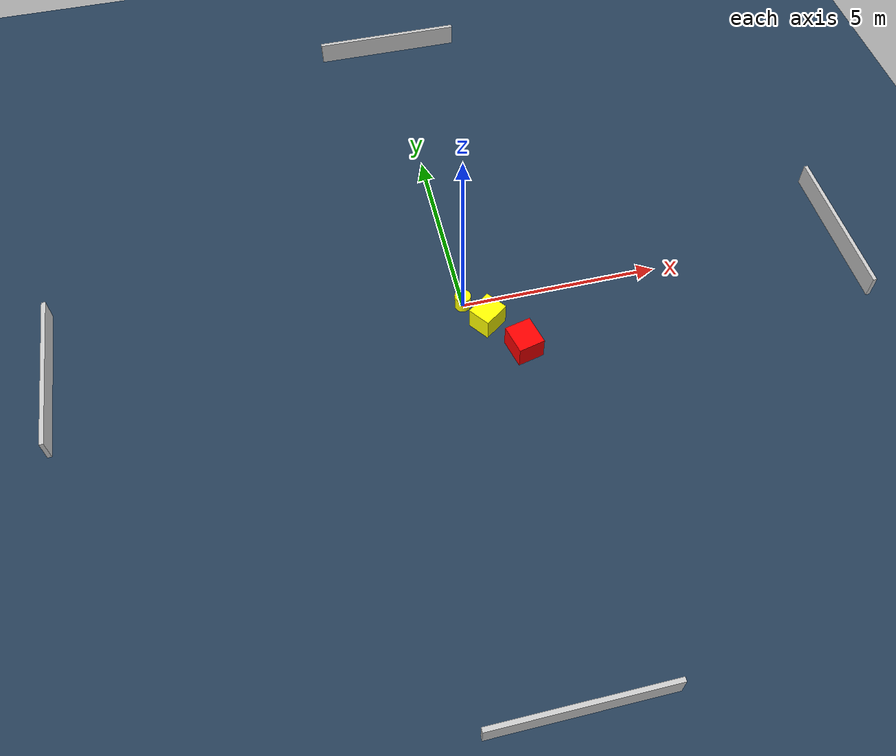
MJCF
<?xml version="1.0" ?>
<mujoco model="generated_environment">
  <option timestep="0.01" integrator="RK4" cone="elliptic"/>
  <default>
    <geom density="1"/>
  </default>
  <asset>
    <texture builtin="gradient" height="3072" name="skybox" rgb1="0.3 0.5 0.7" rgb2="0 0 0" type="skybox" width="512"/>
    <texture builtin="checker" height="300" name="groundplane" rgb1="0.2 0.3 0.4" rgb2="0.1 0.2 0.3" type="2d" width="300"/>
    <material name="groundplane" reflectance="0.2" texrepeat="5 5" texture="groundplane"/>
  </asset>
  <worldbody>
    <light dir="0 0 -1" directional="true" pos="0 0 1.5"/>
    <geom condim="3" friction="0.5 0.005 0.001" material="groundplane" name="floor" pos="0 0 0" size="0 0 0.05" type="plane"/>
    <body name="walls">
      <geom name="wall_1" condim="4" pos="-10.0 0.0 0.3" rgba="0.800000011920929 0.800000011920929 0.800000011920929 1.0" size="0.05 2.0 0.3" type="box"/>
      <geom name="wall_2" condim="4" pos="10.0 0.0 0.3" rgba="0.800000011920929 0.800000011920929 0.800000011920929 1.0" size="0.05 2.0 0.3" type="box"/>
      <geom name="wall_3" condim="4" pos="0.0 -10.0 0.3" rgba="0.800000011920929 0.800000011920929 0.800000011920929 1.0" size="2.0 0.05 0.3" type="box"/>
      <geom name="wall_4" condim="4" pos="0.0 10.0 0.3" rgba="0.800000011920929 0.800000011920929 0.800000011920929 1.0" size="2.0 0.05 0.3" type="box"/>
    </body>
    <body name="robot">
      <joint name="joint_x" type="slide" pos="0 0 0" axis="1 0 0"/>
      <joint name="joint_y" type="slide" pos="0 0 0" axis="0 1 0"/>
      <geom name="robot" type="cylinder" pos="0.0 0.0 0.2" size="0.2 0.2 0.0" mass="5.0" friction="1.0 0.005 0.0001" condim="4" rgba="1.0 1.0 0.0 1.0"/>
    </body>
    <body name="obstacle_1_movable">
      <geom name="obstacle_1_movable" condim="4" pos="0.4671561500144819 -0.6576843856234524 0.3" euler="0 0 126.30315390966472" friction="0.0 0.005 0.001" rgba="1.0 1.0 0.0 1.0" size="0.2934764841281832 0.34113306232170193 0.3" type="box" mass="0.1"/>
      <joint type="free"/>
    </body>
    <body name="obstacle_2_static">
      <geom name="obstacle_2_static" condim="4" pos="1.1361934509057563 -1.603544977874426 0.3" euler="0 0 13.504913199627776" friction="0.0 0.005 0.001" rgba="1.0 0.0 0.0 1.0" size="0.33085639585845317 0.3710347296690396 0.3" type="box"/>
    </body>
  </worldbody>
  <actuator>
    <motor name="actuator_x" joint="joint_x" gear="1" ctrlrange="-1 1"/>
    <motor name="actuator_y" joint="joint_y" gear="1" ctrlrange="-1 1"/>
  </actuator>
</mujoco>
